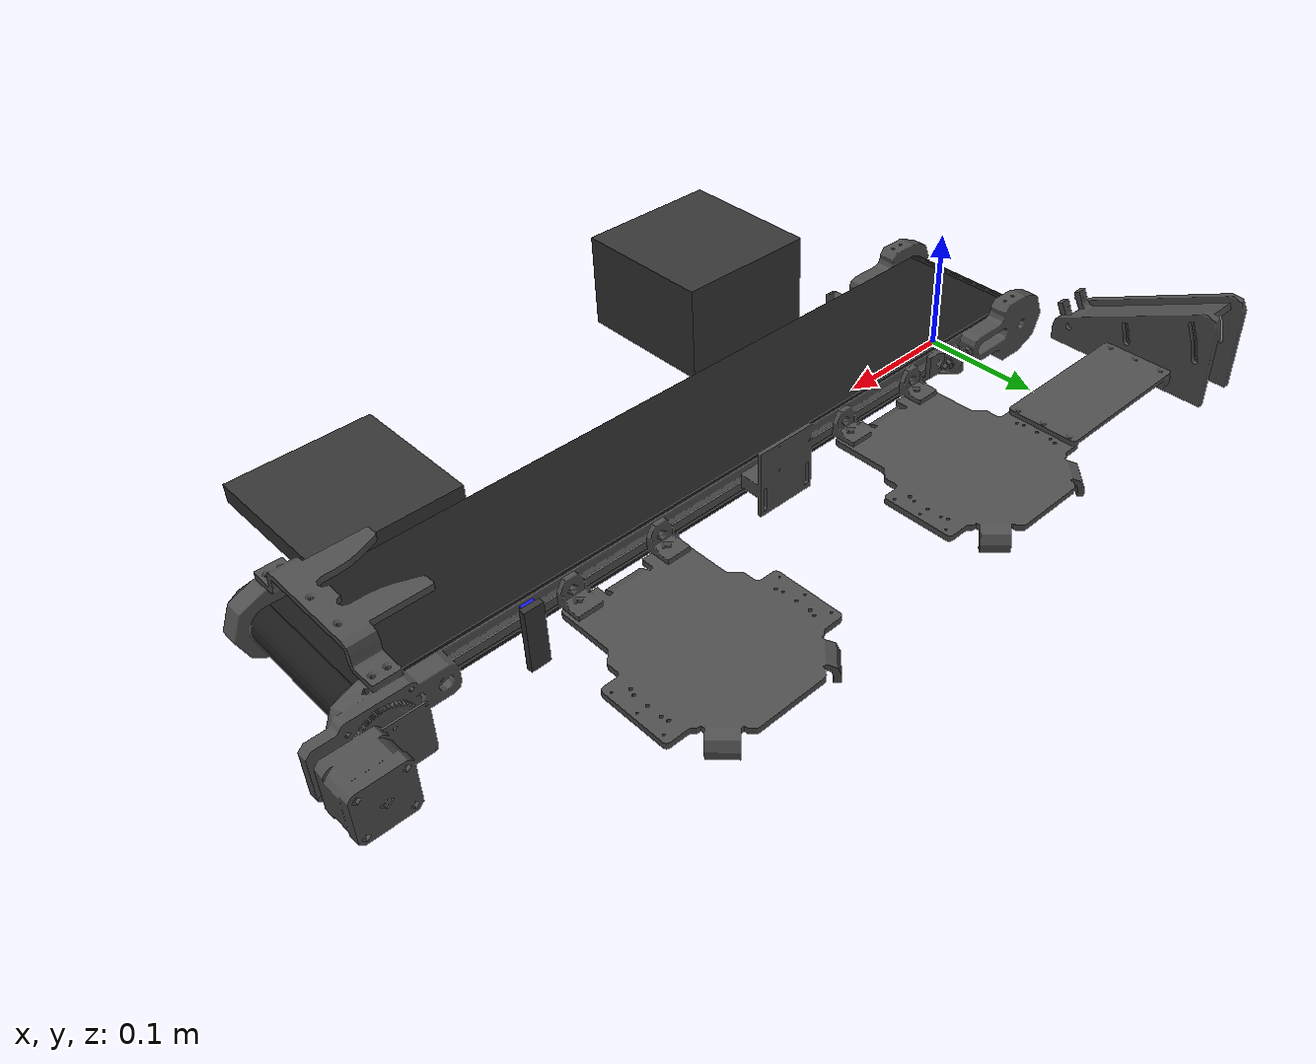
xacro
<?xml version="1.0"?>
<robot name="conveyor" xmlns:xacro="http://www.ros.org/wiki/xacro">

  <xacro:property name="camera_link" value="0.005" />

  <link name="world"/>

    <joint name="fixed_world" type="fixed">
        <origin xyz="0 0 0.01" rpy="0 0 0"/>
        <parent link="world"/>
        <child link="frame_link"/>

    </joint>

  <!-- Fixed part -->
  <link name="frame_link">
    <static>true</static>
    <inertial>
      <origin rpy="1.57 0.0 0.0" xyz="0.0 0.0 0.025"/>
      <mass value="1"/>
      <inertia ixx="1" ixy="0.0" ixz="0.0" iyy="1" iyz="0.0" izz="1"/>
    </inertial>
    <visual>
      <origin rpy="1.57 0.0 0.0" xyz="0 0.0 0.025"/>
      <geometry>
	    <mesh filename="package://conveyor/urdf/STL-Files/conveyor_description/conveyor.STL" scale="0.001 0.001 0.001"/>
      </geometry>
	  <material name = "">
		   <color rgba = "0.3 0.3 0.3 1" />
      </material>
    </visual>
    <collision>
      <origin rpy="1.57 0.0 0.0" xyz="0 0.0 0.025"/>
      <geometry>
	    <mesh filename="package://conveyor/urdf/STL-Files/conveyor_description/conveyor.STL" scale="0.001 0.001 0.001"/>
      </geometry>
    </collision>
  </link>

  <gazebo reference="frame_link">
    <material>Gazebo/Grey </material>
  </gazebo>

   <joint name="fixed" type="fixed">
     <origin xyz="0 0 0" rpy="0 0 0"/>
     <parent link="frame_link"/>
     <child link="conveyor_inertial"/>
   </joint>

   <link name="conveyor_inertial">
     <inertial>
      <mass value="4.5" />
      <origin xyz="0 0.0075 0" rpy="1.57 0 0"/>
      <inertia ixx="1e-1" ixy="0" ixz="0" iyy="1e-1" iyz="0" izz="1e-1" />
     </inertial>
   </link>

   <!-- Camera -->

    <!-- camera pligin-->

  <!-- Ultrasonic sensor visual-->
  <joint name="ultrasonic_joint" type="fixed">
     <axis xyz="0 0 0" />
     <origin xyz="0.470 0.0675 0.047" rpy="0 0 -1.57"/>
     <parent link="frame_link"/>
     <child link="ultrasonic_link"/>
  </joint>

  <link name="ultrasonic_link">
    <collision>
     <origin xyz="0 0 0" rpy="0 0 0" />
     <geometry>
      <box size="0.003 0.01 0.005" />
     </geometry>
     <contact_coefficients mu="1.0" />
    </collision>

    <visual>
      <origin xyz="0 0 0" rpy="0 0 0"/>
     <geometry>
      <box size="0.003 0.01 0.005"/>
     </geometry>
      <material name = "">
		   <color rgba = "0.1 0.1 0.9 1" />
      </material>
    </visual>
  </link>

  <gazebo reference="ultrasonic_link">
    <material>Gazebo/Blue</material>
  </gazebo>

   <!-- ultrasonic sensor plugin rosrange-->
  <gazebo reference="ultrasonic_link">
    <sensor type="ray" name="head_hokuyo_sensor">
      <pose>0 0 0 0 0 0</pose>
      <visualize>0</visualize>
      <update_rate>40</update_rate>
      <ray>
        <scan>
          <horizontal>
            <samples>180</samples>
            <resolution>1</resolution>
            <min_angle>-1.57</min_angle>
            <max_angle>1.57</max_angle>
          </horizontal>
        </scan>
        <range>
          <min>0.01</min>
          <max>30.0</max>
          <resolution>0.01</resolution>
        </range>
      </ray>
      <plugin filename="libgazebo_ros_range.so" name="gazebo_ros_range">
        <gaussianNoise>0.005</gaussianNoise>
        <updateRate>40</updateRate>
        <alwaysOn>0</alwaysOn>
        <topicName>/conveyor/ultrasonic/scan</topicName>
        <frameName>sonar_link</frameName>
        <radiation>ultrasound</radiation>
        <fov>0.5</fov>
      </plugin>
    </sensor>
  </gazebo>

    <link name="us_stand">
    <static>true</static>
    <inertial>
      <origin xyz="0.0 0.0 0.0" />
      <mass value="0.1" />
      <inertia  ixx="0.000161" ixy="0.0"  ixz="0.0"  iyy="0.000161"  iyz="0.0"  izz="0.00024" />
    </inertial>
    <visual>
      <origin xyz="0 0 0"/>
      <geometry>
        <box size="0.005 0.015 0.05" />
      </geometry>
      <material name="grey">
        <color rgba="0.2 0.2 0.2 1"/>
      </material>
    </visual>
    <collision>
      <origin xyz="0 0 0"/>
      <geometry>
        <box size="0.005 0.015 0.05" />
      </geometry>
    </collision>
  </link>
  <gazebo reference="us_stand">
    <material>Gazebo/Grey</material>
    <mu1>0.6</mu1>
    <mu2>0.6</mu2>
  </gazebo>

<joint name="us_stand_joint" type="fixed">
  <parent link="ultrasonic_link" />
  <child link="us_stand" />
  <origin rpy="0 0 0" xyz="-0.004 0 -0.022" />
</joint>

  <!-- Ir sensor vidual -->
     <!-- ir sensor plugin also rosrange -->

   <!-- Belt, moving part -->
  <joint name="belt_joint" type="prismatic">
    <parent link="frame_link"/>
    <child link="belt_link"/>
    <axis xyz="1 0 0"/>
    <limit effort="1000.0" lower="-0.05" upper="0.05" velocity="0.5"/>
    <origin xyz="0.28 0.0 0.04" rpy="3.14 0 0"/>
  </joint>
  <link name="belt_link">
    <inertial>
      <origin rpy="0.0 0.0 0.0" xyz="0.0 0.0 0.0"/>
      <mass value="1"/>
      <inertia ixx="1" ixy="0.0" ixz="0.0" iyy="1" iyz="0.0" izz="1"/>
    </inertial>
    <collision>
      <origin rpy="0 0 0" xyz="0 0 0"/>
      <geometry>
	     <box size="0.6 0.09 0.002"/>
      </geometry>
    </collision>
  </link>

  <gazebo reference="belt_link">
    <mu1>0.6</mu1>
    <mu2>0.6</mu2>
    <material>Gazebo/White </material>
  </gazebo>

   <!-- beltplugin, from ariac -->
  <gazebo>
    <plugin name="conveyor_belt_plugin" filename="libROSConveyorBeltPlugin.so">
        <robot_namespace>/conveyor</robot_namespace>
        <link>belt_link</link>
        <update_rate>10</update_rate>
        <max_velocity>0.2</max_velocity>
    </plugin>
  </gazebo>

  <link name="uarm_stand">
    <static>true</static>
    <inertial>
      <origin xyz="0.0 0.0 0.0" />
      <mass value="0.1" />
      <inertia  ixx="0.000161" ixy="0.0"  ixz="0.0"  iyy="0.000161"  iyz="0.0"  izz="0.00024" />
    </inertial>
    <visual>
      <origin xyz="0 0 0"/>
      <geometry>
        <box size="0.12 0.12 0.08" />
      </geometry>
      <material name="grey">
        <color rgba="0.2 0.2 0.2 1"/>
      </material>
    </visual>
    <collision>
      <origin xyz="0 0 0"/>
      <geometry>
        <box size="0.12 0.12 0.08" />
      </geometry>
    </collision>
  </link>
  <gazebo reference="uarm_stand">
    <material>Gazebo/Grey</material>
    <mu1>0.6</mu1>
    <mu2>0.6</mu2>
  </gazebo>

<joint name="uarm_stand_joint" type="fixed">
  <parent link="frame_link" />
  <child link="uarm_stand" />
  <origin rpy="0 0 0" xyz="0.13 -0.15 0.04" />
</joint>

  <link name="uarm_stand2">
    <static>true</static>
    <inertial>
      <origin xyz="0.0 0.0 0.0" />
      <mass value="0.1" />
      <inertia  ixx="0.000161" ixy="0.0"  ixz="0.0"  iyy="0.000161"  iyz="0.0"  izz="0.00024" />
    </inertial>
    <visual>
      <origin xyz="0 0 0"/>
      <geometry>
        <box size="0.12 0.12 0.016" />
      </geometry>
      <material name="grey">
        <color rgba="0.2 0.2 0.2 1"/>
      </material>
    </visual>
    <collision>
      <origin xyz="0 0 0"/>
      <geometry>
        <box size="0.12 0.12 0.016" />
      </geometry>
    </collision>
  </link>
  <gazebo reference="uarm_stand2">
    <material>Gazebo/Grey</material>
    <mu1>0.6</mu1>
    <mu2>0.6</mu2>
  </gazebo>

<joint name="uarm_stand_joint2" type="fixed">
  <parent link="frame_link" />
  <child link="uarm_stand2" />
  <origin rpy="0 0 0" xyz="0.47 -0.15 0.008" />
</joint>

<link name="belt_box1">
  <visual>
    <geometry>
      <box size="0.609 0.102 0.003"/>
    </geometry>
    <material name = "">
      <color rgba = "0.1 0.1 0.1 1" />
    </material>
  </visual>
</link>
<gazebo reference="belt_box1">
  <mu1 value="0.0"/>
  <mu2 value="0.0"/>
  <material>Gazebo/DarkGrey</material>
</gazebo>
<joint name="fix_box1" type="fixed">
  <origin xyz = "0.275 0 0.0383" rpy = "0 0 0"/>
  <parent link="frame_link"/>
  <child link="belt_box1"/>
</joint>

<link name="belt_box2">
  <visual>
    <geometry>
      <box size="0.609 0.102 0.0035"/>
    </geometry>
    <material name = "">
      <color rgba = "0.1 0.1 0.1 1" />
    </material>
  </visual>
</link>
<gazebo reference="belt_box2">
  <mu1 value="0.0"/>
  <mu2 value="0.0"/>
  <material>Gazebo/DarkGrey</material>
</gazebo>
<joint name="fix_box2" type="fixed">
  <origin xyz = "0.275 0 0.0122" rpy = "0 0 0"/>
  <parent link="frame_link"/>
  <child link="belt_box2"/>
</joint>

<link name="belt_cyl1">
  <visual>
    <origin xyz = "0 0 0" rpy = "1.570796327 0 0"/>
    <geometry>
      <cylinder length="0.102" radius="0.015"/>
    </geometry>
    <material name = "">
      <color rgba = "0.1 0.1 0.1 1" />
    </material>
  </visual>
</link>
<gazebo reference="belt_cyl1">
  <mu1 value="0.0"/>
  <mu2 value="0.0"/>
  <material>Gazebo/DarkGrey</material>
</gazebo>
<joint name="fix_cyl1" type="fixed">
  <origin xyz = "-0.0275 0 0.025" rpy = "0 0 0"/>
  <parent link="frame_link"/>
  <child link="belt_cyl1"/>
</joint>

<link name="belt_cyl2">
  <visual>
    <origin xyz = "0 0 0" rpy = "1.570796327 0 0"/>
    <geometry>
      <cylinder length="0.102" radius="0.015"/>
    </geometry>
    <material name = "">
      <color rgba = "0.1 0.1 0.1 1" />
    </material>
  </visual>
</link>
<gazebo reference="belt_cyl2">
  <mu1 value="0.0"/>
  <mu2 value="0.0"/>
  <material>Gazebo/DarkGrey</material>
</gazebo>
<joint name="fix_cyl2" type="fixed">
  <origin xyz = "0.5782 0 0.025" rpy = "0 0 0"/>
  <parent link="frame_link"/>
  <child link="belt_cyl2"/>
</joint>

<gazebo>
  <plugin name="gazebo_ros_control" filename="libgazebo_ros_control.so">
  </plugin>
</gazebo>
</robot>
